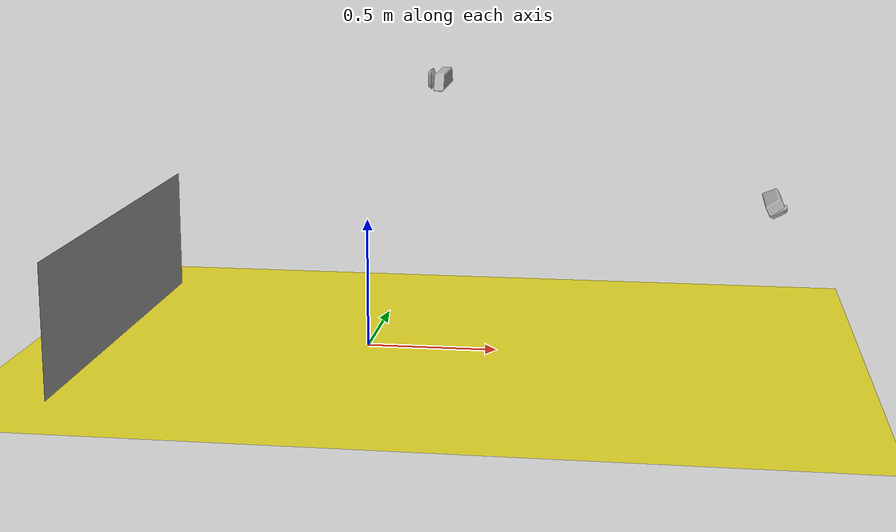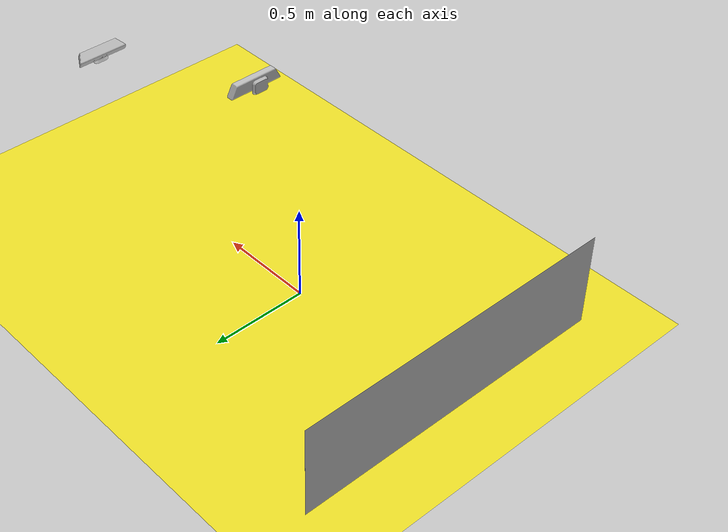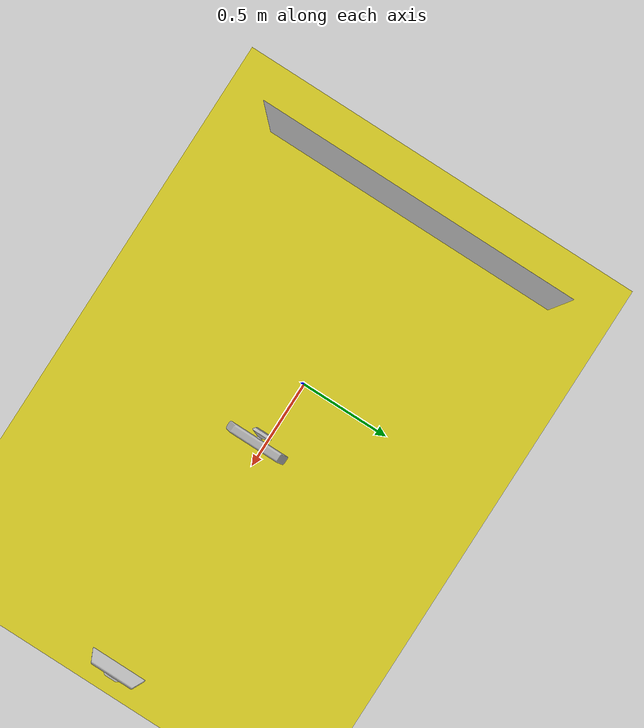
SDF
<?xml version="1.0" ?>

<sdf version="1.6">

  <world name="ur5_robot_base">

    <plugin name="ros_link_attacher_plugin" filename="libgazebo_ros_link_attacher.so"/>
    <gravity>0 0 -9.81</gravity>
    <physics name="default_physics" default="0" type="ode">
      <max_step_size>0.001</max_step_size>
      <real_time_factor>1</real_time_factor>
      <real_time_update_rate>1000</real_time_update_rate>
    </physics>

    <scene>
      <ambient>0.4 0.4 0.4 1</ambient>
      <background>0.7 0.7 0.7 1</background>
      <shadows>1</shadows>
    </scene>

    <!-- Light Source -->
    <include>
      <uri>model://sun</uri>
    </include>

    <!-- A ground plane -->

    <model name="ground_plane">
    <static>true</static>
    <link name="link">
      <collision name="collision">
        <geometry>
          <plane>
            <normal>0 0 1</normal>
            <size>100 100</size>
          </plane>
        </geometry>
        <surface>
          <contact>
             <collide_bitmask>0xffff</collide_bitmask>
          </contact>
          <friction>
            <ode>
              <mu>100</mu>
              <mu2>50</mu2>
            </ode>
          </friction>
        </surface>
      </collision>
      <visual name="visual">
        <cast_shadows>false</cast_shadows>
        <geometry>
          <plane>
            <normal>0 0 1</normal>
            <size>100 100</size>
          </plane>
        </geometry>
        <material>
          <script>
            <uri>file://media/materials/scripts/gazebo.material</uri>
            <name>Gazebo/Yellow</name>
          </script>
        </material>
      </visual>
    </link>
    </model>

    <include>
      <uri>model://kinect</uri>
      <pose>1.5 0 0.6 0 0.5 3.14</pose>
      <static>true</static>
    </include>

    <include>
      <uri>model://silhouette_castle</uri>
      <pose>-1.0 0 0.25 0 1.57 0</pose>
      <static>true</static>
    </include>

    <include>
      <uri>model://kinect2</uri>
      <pose>0.293 0 1.02 0 1.57 0</pose>
      <static>true</static>
    </include>

  </world>
</sdf>

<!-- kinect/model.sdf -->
<sdf version="1.5">
  <model name="kinect">
    <pose>0 0 0.036 0 0 0</pose>
    <link name="link">
      <inertial>
        <mass>0.1</mass>
      </inertial>
      <collision name="collision">
        <geometry>
          <box>
            <size>0.073000 0.276000 0.072000</size>
          </box>
        </geometry>
      </collision>
      <visual name="visual">
        <geometry>
          <mesh>
            <uri>model://kinect/meshes/kinect.dae</uri>
          </mesh>
        </geometry>
      </visual>
      <sensor name="camera" type="depth">
        <update_rate>20</update_rate>
        <camera>
          <horizontal_fov>1.047198</horizontal_fov>
          <image>
            <width>2048</width>
            <height>2048</height>
            <format>R8G8B8</format>
          </image>
          <clip>
            <near>0.05</near>
            <far>3</far>
          </clip>
        </camera>
        <plugin name="camera_plugin" filename="libgazebo_ros_openni_kinect.so">
          <baseline>0.2</baseline>
          <alwaysOn>true</alwaysOn>
          <updateRate>0.0</updateRate>
          <cameraName>camera_ir</cameraName>
          <imageTopicName>/camera/color/image_raw</imageTopicName>
          <cameraInfoTopicName>/camera/color/camera_info</cameraInfoTopicName>
          <depthImageTopicName>/camera/depth/image_raw</depthImageTopicName>
          <depthImageCameraInfoTopicName>/camera/depth/camera_info</depthImageCameraInfoTopicName>
          <pointCloudTopicName>/camera/depth/points</pointCloudTopicName>
          <frameName>camera_link</frameName>
          <pointCloudCutoff>0.5</pointCloudCutoff>
          <pointCloudCutoffMax>3.0</pointCloudCutoffMax>
          <distortionK1>0</distortionK1>
          <distortionK2>0</distortionK2>
          <distortionK3>0</distortionK3>
          <distortionT1>0</distortionT1>
          <distortionT2>0</distortionT2>
          <CxPrime>0</CxPrime>
          <Cx>0</Cx>
          <Cy>0</Cy>
          <focalLength>0</focalLength>
          <hackBaseline>0</hackBaseline>
        </plugin>
      </sensor>
    </link>
  </model>
</sdf>

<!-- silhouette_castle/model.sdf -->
<sdf version="1.4">
   <model name="silhouette_castle">
      <static>true</static>
      <link name="link">
         <collision name="collision">
            <geometry>
                <box>
                  <size>0.5 1.7 0.0001</size>
               </box>
            </geometry>
            <surface>
               <friction>
                  <ode>
                     <mu>100</mu>
                     <mu2>50</mu2>
                  </ode>
               </friction>
            </surface>
         </collision>
         <visual name="visual">
            <cast_shadows>false</cast_shadows>
            <geometry>
                <box>
                  <size>0.5 1.7 0.0001</size>
               </box>
            </geometry>
            <material>
               <script>
                  <uri>model://silhouette_castle/materials/scripts</uri>
                  <uri>model://silhouette_castle/materials/textures/</uri>
                  <name>silhouette2/Image</name>
               </script>
            </material>
         </visual>
      </link>
   </model>
</sdf>

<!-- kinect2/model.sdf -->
<sdf version="1.5">
  <model name="kinect2">
    <pose>0 0 0.036 0 0 0</pose>
    <link name="link">
      <inertial>
        <mass>0.1</mass>
      </inertial>
      <collision name="collision">
        <geometry>
          <box>
            <size>0.073000 0.276000 0.072000</size>
          </box>
        </geometry>
      </collision>
      <visual name="visual">
        <geometry>
          <mesh>
            <uri>model://kinect/meshes/kinect.dae</uri>
          </mesh>
        </geometry>
      </visual>
      <sensor name="camera" type="depth">
        <update_rate>20</update_rate>
        <camera>
          <horizontal_fov>1.047198</horizontal_fov>
          <image>
            <width>1024</width>
            <height>1024</height>
            <format>R8G8B8</format>
          </image>
          <clip>
            <near>0.05</near>
            <far>3</far>
          </clip>
        </camera>
        <plugin name="camera_plugin" filename="libgazebo_ros_openni_kinect.so">
          <baseline>0.2</baseline>
          <alwaysOn>true</alwaysOn>
          <updateRate>0.0</updateRate>
          <cameraName>camera_ir_2</cameraName>
          <imageTopicName>/camera/color/image_raw_2</imageTopicName>
          <cameraInfoTopicName>/camera/color/camera_info_2</cameraInfoTopicName>
          <depthImageTopicName>/camera/depth/image_raw_2</depthImageTopicName>
          <depthImageCameraInfoTopicName>/camera/depth/camera_info_2</depthImageCameraInfoTopicName>
          <pointCloudTopicName>/camera/depth/points_2</pointCloudTopicName>
          <frameName>camera_link_2</frameName>
          <pointCloudCutoff>0.5</pointCloudCutoff>
          <pointCloudCutoffMax>3.0</pointCloudCutoffMax>
          <distortionK1>0</distortionK1>
          <distortionK2>0</distortionK2>
          <distortionK3>0</distortionK3>
          <distortionT1>0</distortionT1>
          <distortionT2>0</distortionT2>
          <CxPrime>0</CxPrime>
          <Cx>0</Cx>
          <Cy>0</Cy>
          <focalLength>0</focalLength>
          <hackBaseline>0</hackBaseline>
        </plugin>
      </sensor>
    </link>
  </model>
</sdf>
